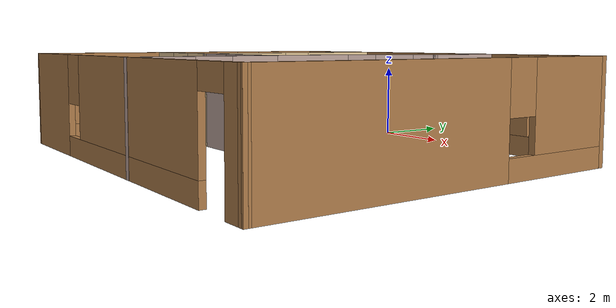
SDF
<?xml version='1.0'?>
<sdf version='1.6'>
  <model name='wierdMap'>
    <pose frame=''>1.76051 -4.87689 0 0 -0 0</pose>
    <link name='Wall_52'>
      <pose frame=''>-5.45927 -0.009076 0 0 0 -1.56748</pose>
      <visual name='Wall_52_Visual_0'>
        <pose frame=''>-3.52837 0 1.25 0 -0 0</pose>
        <geometry>
          <box>
            <size>2.21553 0.15 2.5</size>
          </box>
        </geometry>
        <material>
          <script>
            <uri>file://media/materials/scripts/gazebo.material</uri>
            <name>Gazebo/Wood</name>
          </script>
          <ambient>1 1 1 1</ambient>
        </material>
        <meta>
          <layer>0</layer>
        </meta>
      </visual>
      <collision name='Wall_52_Collision_0'>
        <geometry>
          <box>
            <size>2.21553 0.15 2.5</size>
          </box>
        </geometry>
        <pose frame=''>-3.52837 0 1.25 0 -0 0</pose>
      </collision>
      <visual name='Wall_52_Visual_1'>
        <pose frame=''>1.10776 0 0.25 0 -0 0</pose>
        <geometry>
          <box>
            <size>7.05673 0.15 0.5</size>
          </box>
        </geometry>
        <material>
          <script>
            <uri>file://media/materials/scripts/gazebo.material</uri>
            <name>Gazebo/Wood</name>
          </script>
          <ambient>1 1 1 1</ambient>
        </material>
        <meta>
          <layer>0</layer>
        </meta>
      </visual>
      <collision name='Wall_52_Collision_1'>
        <geometry>
          <box>
            <size>7.05673 0.15 0.5</size>
          </box>
        </geometry>
        <pose frame=''>1.10776 0 0.25 0 -0 0</pose>
      </collision>
      <visual name='Wall_52_Visual_2'>
        <pose frame=''>1.50776 0 1.5 0 -0 0</pose>
        <geometry>
          <box>
            <size>6.25673 0.15 2</size>
          </box>
        </geometry>
        <material>
          <script>
            <uri>file://media/materials/scripts/gazebo.material</uri>
            <name>Gazebo/Wood</name>
          </script>
          <ambient>1 1 1 1</ambient>
        </material>
        <meta>
          <layer>0</layer>
        </meta>
      </visual>
      <collision name='Wall_52_Collision_2'>
        <geometry>
          <box>
            <size>6.25673 0.15 2</size>
          </box>
        </geometry>
        <pose frame=''>1.50776 0 1.5 0 -0 0</pose>
      </collision>
      <visual name='Wall_52_Visual_3'>
        <pose frame=''>-2.0206 0 1.9 0 -0 0</pose>
        <geometry>
          <box>
            <size>0.8 0.15 1.2</size>
          </box>
        </geometry>
        <material>
          <script>
            <uri>file://media/materials/scripts/gazebo.material</uri>
            <name>Gazebo/Wood</name>
          </script>
          <ambient>1 1 1 1</ambient>
        </material>
        <meta>
          <layer>0</layer>
        </meta>
      </visual>
      <collision name='Wall_52_Collision_3'>
        <geometry>
          <box>
            <size>0.8 0.15 1.2</size>
          </box>
        </geometry>
        <pose frame=''>-2.0206 0 1.9 0 -0 0</pose>
      </collision>
    </link>
    <link name='Wall_53'>
      <pose frame=''>0.015206 -4.57618 0 0 0 -0.001099</pose>
      <visual name='Wall_53_Visual_0'>
        <pose frame=''>-4.19972 0 1.25 0 -0 0</pose>
        <geometry>
          <box>
            <size>2.66927 0.15 2.5</size>
          </box>
        </geometry>
        <material>
          <script>
            <uri>file://media/materials/scripts/gazebo.material</uri>
            <name>Gazebo/Wood</name>
          </script>
          <ambient>1 1 1 1</ambient>
        </material>
        <meta>
          <layer>0</layer>
        </meta>
      </visual>
      <collision name='Wall_53_Collision_0'>
        <geometry>
          <box>
            <size>2.66927 0.15 2.5</size>
          </box>
        </geometry>
        <pose frame=''>-4.19972 0 1.25 0 -0 0</pose>
      </collision>
      <visual name='Wall_53_Visual_1'>
        <pose frame=''>5.25308 0 1.25 0 -0 0</pose>
        <geometry>
          <box>
            <size>0.562551 0.15 2.5</size>
          </box>
        </geometry>
        <material>
          <script>
            <uri>file://media/materials/scripts/gazebo.material</uri>
            <name>Gazebo/Wood</name>
          </script>
          <ambient>1 1 1 1</ambient>
        </material>
        <meta>
          <layer>0</layer>
        </meta>
      </visual>
      <collision name='Wall_53_Collision_1'>
        <geometry>
          <box>
            <size>0.562551 0.15 2.5</size>
          </box>
        </geometry>
        <pose frame=''>5.25308 0 1.25 0 -0 0</pose>
      </collision>
      <visual name='Wall_53_Visual_2'>
        <pose frame=''>0.603361 0 0.25 0 -0 0</pose>
        <geometry>
          <box>
            <size>6.9369 0.15 0.5</size>
          </box>
        </geometry>
        <material>
          <script>
            <uri>file://media/materials/scripts/gazebo.material</uri>
            <name>Gazebo/Wood</name>
          </script>
          <ambient>1 1 1 1</ambient>
        </material>
        <meta>
          <layer>0</layer>
        </meta>
      </visual>
      <collision name='Wall_53_Collision_2'>
        <geometry>
          <box>
            <size>6.9369 0.15 0.5</size>
          </box>
        </geometry>
        <pose frame=''>0.603361 0 0.25 0 -0 0</pose>
      </collision>
      <visual name='Wall_53_Visual_3'>
        <pose frame=''>1.00336 0 1.5 0 -0 0</pose>
        <geometry>
          <box>
            <size>6.1369 0.15 2</size>
          </box>
        </geometry>
        <material>
          <script>
            <uri>file://media/materials/scripts/gazebo.material</uri>
            <name>Gazebo/Wood</name>
          </script>
          <ambient>1 1 1 1</ambient>
        </material>
        <meta>
          <layer>0</layer>
        </meta>
      </visual>
      <collision name='Wall_53_Collision_3'>
        <geometry>
          <box>
            <size>6.1369 0.15 2</size>
          </box>
        </geometry>
        <pose frame=''>1.00336 0 1.5 0 -0 0</pose>
      </collision>
      <visual name='Wall_53_Visual_4'>
        <pose frame=''>-2.46509 0 1.9 0 -0 0</pose>
        <geometry>
          <box>
            <size>0.8 0.15 1.2</size>
          </box>
        </geometry>
        <material>
          <script>
            <uri>file://media/materials/scripts/gazebo.material</uri>
            <name>Gazebo/Wood</name>
          </script>
          <ambient>1 1 1 1</ambient>
        </material>
        <meta>
          <layer>0</layer>
        </meta>
      </visual>
      <collision name='Wall_53_Collision_4'>
        <geometry>
          <box>
            <size>0.8 0.15 1.2</size>
          </box>
        </geometry>
        <pose frame=''>-2.46509 0 1.9 0 -0 0</pose>
      </collision>
      <visual name='Wall_53_Visual_5'>
        <pose frame=''>4.52181 0 2.25 0 -0 0</pose>
        <geometry>
          <box>
            <size>0.9 0.15 0.5</size>
          </box>
        </geometry>
        <material>
          <script>
            <uri>file://media/materials/scripts/gazebo.material</uri>
            <name>Gazebo/Wood</name>
          </script>
          <ambient>1 1 1 1</ambient>
        </material>
        <meta>
          <layer>0</layer>
        </meta>
      </visual>
      <collision name='Wall_53_Collision_5'>
        <geometry>
          <box>
            <size>0.9 0.15 0.5</size>
          </box>
        </geometry>
        <pose frame=''>4.52181 0 2.25 0 -0 0</pose>
      </collision>
    </link>
    <link name='Wall_54'>
      <pose frame=''>5.47456 4.5e-05 0 0 -0 1.5708</pose>
      <visual name='Wall_54_Visual_0'>
        <pose frame=''>-1.61369 0 1.25 0 -0 0</pose>
        <geometry>
          <box>
            <size>6.08712 0.15 2.5</size>
          </box>
        </geometry>
        <material>
          <script>
            <uri>file://media/materials/scripts/gazebo.material</uri>
            <name>Gazebo/Wood</name>
          </script>
          <ambient>1 1 1 1</ambient>
        </material>
        <meta>
          <layer>0</layer>
        </meta>
      </visual>
      <collision name='Wall_54_Collision_0'>
        <geometry>
          <box>
            <size>6.08712 0.15 2.5</size>
          </box>
        </geometry>
        <pose frame=''>-1.61369 0 1.25 0 -0 0</pose>
      </collision>
      <visual name='Wall_54_Visual_1'>
        <pose frame=''>3.04356 0 0.25 0 -0 0</pose>
        <geometry>
          <box>
            <size>3.22739 0.15 0.5</size>
          </box>
        </geometry>
        <material>
          <script>
            <uri>file://media/materials/scripts/gazebo.material</uri>
            <name>Gazebo/Wood</name>
          </script>
          <ambient>1 1 1 1</ambient>
        </material>
        <meta>
          <layer>0</layer>
        </meta>
      </visual>
      <collision name='Wall_54_Collision_1'>
        <geometry>
          <box>
            <size>3.22739 0.15 0.5</size>
          </box>
        </geometry>
        <pose frame=''>3.04356 0 0.25 0 -0 0</pose>
      </collision>
      <visual name='Wall_54_Visual_2'>
        <pose frame=''>3.44356 0 1.5 0 -0 0</pose>
        <geometry>
          <box>
            <size>2.42739 0.15 2</size>
          </box>
        </geometry>
        <material>
          <script>
            <uri>file://media/materials/scripts/gazebo.material</uri>
            <name>Gazebo/Wood</name>
          </script>
          <ambient>1 1 1 1</ambient>
        </material>
        <meta>
          <layer>0</layer>
        </meta>
      </visual>
      <collision name='Wall_54_Collision_2'>
        <geometry>
          <box>
            <size>2.42739 0.15 2</size>
          </box>
        </geometry>
        <pose frame=''>3.44356 0 1.5 0 -0 0</pose>
      </collision>
      <visual name='Wall_54_Visual_3'>
        <pose frame=''>1.82987 0 1.9 0 -0 0</pose>
        <geometry>
          <box>
            <size>0.8 0.15 1.2</size>
          </box>
        </geometry>
        <material>
          <script>
            <uri>file://media/materials/scripts/gazebo.material</uri>
            <name>Gazebo/Wood</name>
          </script>
          <ambient>1 1 1 1</ambient>
        </material>
        <meta>
          <layer>0</layer>
        </meta>
      </visual>
      <collision name='Wall_54_Collision_3'>
        <geometry>
          <box>
            <size>0.8 0.15 1.2</size>
          </box>
        </geometry>
        <pose frame=''>1.82987 0 1.9 0 -0 0</pose>
      </collision>
    </link>
    <link name='Wall_55'>
      <pose frame=''>0.049563 4.58228 0 0 -0 3.14159</pose>
      <visual name='Wall_55_Visual_0'>
        <pose frame=''>-4.9366 0 1.25 0 -0 0</pose>
        <geometry>
          <box>
            <size>1.1268 0.15 2.5</size>
          </box>
        </geometry>
        <material>
          <script>
            <uri>file://media/materials/scripts/gazebo.material</uri>
            <name>Gazebo/Wood</name>
          </script>
          <ambient>1 1 1 1</ambient>
        </material>
        <meta>
          <layer>0</layer>
        </meta>
      </visual>
      <collision name='Wall_55_Collision_0'>
        <geometry>
          <box>
            <size>1.1268 0.15 2.5</size>
          </box>
        </geometry>
        <pose frame=''>-4.9366 0 1.25 0 -0 0</pose>
      </collision>
      <visual name='Wall_55_Visual_1'>
        <pose frame=''>0.563398 0 0.25 0 -0 0</pose>
        <geometry>
          <box>
            <size>9.8732 0.15 0.5</size>
          </box>
        </geometry>
        <material>
          <script>
            <uri>file://media/materials/scripts/gazebo.material</uri>
            <name>Gazebo/Wood</name>
          </script>
          <ambient>1 1 1 1</ambient>
        </material>
        <meta>
          <layer>0</layer>
        </meta>
      </visual>
      <collision name='Wall_55_Collision_1'>
        <geometry>
          <box>
            <size>9.8732 0.15 0.5</size>
          </box>
        </geometry>
        <pose frame=''>0.563398 0 0.25 0 -0 0</pose>
      </collision>
      <visual name='Wall_55_Visual_2'>
        <pose frame=''>0.963398 0 1.5 0 -0 0</pose>
        <geometry>
          <box>
            <size>9.0732 0.15 2</size>
          </box>
        </geometry>
        <material>
          <script>
            <uri>file://media/materials/scripts/gazebo.material</uri>
            <name>Gazebo/Wood</name>
          </script>
          <ambient>1 1 1 1</ambient>
        </material>
        <meta>
          <layer>0</layer>
        </meta>
      </visual>
      <collision name='Wall_55_Collision_2'>
        <geometry>
          <box>
            <size>9.0732 0.15 2</size>
          </box>
        </geometry>
        <pose frame=''>0.963398 0 1.5 0 -0 0</pose>
      </collision>
      <visual name='Wall_55_Visual_3'>
        <pose frame=''>-3.9732 0 1.9 0 -0 0</pose>
        <geometry>
          <box>
            <size>0.8 0.15 1.2</size>
          </box>
        </geometry>
        <material>
          <script>
            <uri>file://media/materials/scripts/gazebo.material</uri>
            <name>Gazebo/Wood</name>
          </script>
          <ambient>1 1 1 1</ambient>
        </material>
        <meta>
          <layer>0</layer>
        </meta>
      </visual>
      <collision name='Wall_55_Collision_3'>
        <geometry>
          <box>
            <size>0.8 0.15 1.2</size>
          </box>
        </geometry>
        <pose frame=''>-3.9732 0 1.9 0 -0 0</pose>
      </collision>
    </link>
    <link name='Wall_57'>
      <pose frame=''>-2.41958 1.75203 0 0 0 -1.5708</pose>
      <visual name='Wall_57_Visual_0'>
        <pose frame=''>-1.67644 0 1.25 0 -0 0</pose>
        <geometry>
          <box>
            <size>2.39712 0.15 2.5</size>
          </box>
        </geometry>
        <material>
          <script>
            <uri>file://media/materials/scripts/gazebo.material</uri>
            <name>Gazebo/Grey</name>
          </script>
          <ambient>0.921569 0.807843 0.615686 1</ambient>
        </material>
        <meta>
          <layer>0</layer>
        </meta>
      </visual>
      <collision name='Wall_57_Collision_0'>
        <geometry>
          <box>
            <size>2.39712 0.15 2.5</size>
          </box>
        </geometry>
        <pose frame=''>-1.67644 0 1.25 0 -0 0</pose>
      </collision>
      <visual name='Wall_57_Visual_1'>
        <pose frame=''>1.19856 0 0.25 0 -0 0</pose>
        <geometry>
          <box>
            <size>3.35288 0.15 0.5</size>
          </box>
        </geometry>
        <material>
          <script>
            <uri>file://media/materials/scripts/gazebo.material</uri>
            <name>Gazebo/Grey</name>
          </script>
          <ambient>0.921569 0.807843 0.615686 1</ambient>
        </material>
        <meta>
          <layer>0</layer>
        </meta>
      </visual>
      <collision name='Wall_57_Collision_1'>
        <geometry>
          <box>
            <size>3.35288 0.15 0.5</size>
          </box>
        </geometry>
        <pose frame=''>1.19856 0 0.25 0 -0 0</pose>
      </collision>
      <visual name='Wall_57_Visual_2'>
        <pose frame=''>1.59856 0 1.5 0 -0 0</pose>
        <geometry>
          <box>
            <size>2.55288 0.15 2</size>
          </box>
        </geometry>
        <material>
          <script>
            <uri>file://media/materials/scripts/gazebo.material</uri>
            <name>Gazebo/Grey</name>
          </script>
          <ambient>0.921569 0.807843 0.615686 1</ambient>
        </material>
        <meta>
          <layer>0</layer>
        </meta>
      </visual>
      <collision name='Wall_57_Collision_2'>
        <geometry>
          <box>
            <size>2.55288 0.15 2</size>
          </box>
        </geometry>
        <pose frame=''>1.59856 0 1.5 0 -0 0</pose>
      </collision>
      <visual name='Wall_57_Visual_3'>
        <pose frame=''>-0.077883 0 1.9 0 -0 0</pose>
        <geometry>
          <box>
            <size>0.8 0.15 1.2</size>
          </box>
        </geometry>
        <material>
          <script>
            <uri>file://media/materials/scripts/gazebo.material</uri>
            <name>Gazebo/Grey</name>
          </script>
          <ambient>0.921569 0.807843 0.615686 1</ambient>
        </material>
        <meta>
          <layer>0</layer>
        </meta>
      </visual>
      <collision name='Wall_57_Collision_3'>
        <geometry>
          <box>
            <size>0.8 0.15 1.2</size>
          </box>
        </geometry>
        <pose frame=''>-0.077883 0 1.9 0 -0 0</pose>
      </collision>
    </link>
    <link name='Wall_58'>
      <pose frame=''>-3.93186 -1.0457 0 0 -0 3.14009</pose>
      <visual name='Wall_58_Visual_0'>
        <pose frame=''>-1.03377 0 1.25 0 -0 0</pose>
        <geometry>
          <box>
            <size>1.10715 0.15 2.5</size>
          </box>
        </geometry>
        <material>
          <script>
            <uri>file://media/materials/scripts/gazebo.material</uri>
            <name>Gazebo/Grey</name>
          </script>
          <ambient>0.921569 0.807843 0.615686 1</ambient>
        </material>
        <meta>
          <layer>0</layer>
        </meta>
      </visual>
      <collision name='Wall_58_Collision_0'>
        <geometry>
          <box>
            <size>1.10715 0.15 2.5</size>
          </box>
        </geometry>
        <pose frame=''>-1.03377 0 1.25 0 -0 0</pose>
      </collision>
      <visual name='Wall_58_Visual_1'>
        <pose frame=''>1.00357 0 1.25 0 -0 0</pose>
        <geometry>
          <box>
            <size>1.16754 0.15 2.5</size>
          </box>
        </geometry>
        <material>
          <script>
            <uri>file://media/materials/scripts/gazebo.material</uri>
            <name>Gazebo/Grey</name>
          </script>
          <ambient>0.921569 0.807843 0.615686 1</ambient>
        </material>
        <meta>
          <layer>0</layer>
        </meta>
      </visual>
      <collision name='Wall_58_Collision_1'>
        <geometry>
          <box>
            <size>1.16754 0.15 2.5</size>
          </box>
        </geometry>
        <pose frame=''>1.00357 0 1.25 0 -0 0</pose>
      </collision>
      <visual name='Wall_58_Visual_2'>
        <pose frame=''>-0.030197 0 2.25 0 -0 0</pose>
        <geometry>
          <box>
            <size>0.9 0.15 0.5</size>
          </box>
        </geometry>
        <material>
          <script>
            <uri>file://media/materials/scripts/gazebo.material</uri>
            <name>Gazebo/Grey</name>
          </script>
          <ambient>0.921569 0.807843 0.615686 1</ambient>
        </material>
        <meta>
          <layer>0</layer>
        </meta>
      </visual>
      <collision name='Wall_58_Collision_2'>
        <geometry>
          <box>
            <size>0.9 0.15 0.5</size>
          </box>
        </geometry>
        <pose frame=''>-0.030197 0 2.25 0 -0 0</pose>
      </collision>
    </link>
    <link name='Wall_60'>
      <pose frame=''>-0.744577 -1.04797 0 0 -0 0</pose>
      <visual name='Wall_60_Visual_0'>
        <pose frame=''>-1.12087 0 1.25 0 -0 0</pose>
        <geometry>
          <box>
            <size>1.25827 0.15 2.5</size>
          </box>
        </geometry>
        <material>
          <script>
            <uri>file://media/materials/scripts/gazebo.material</uri>
            <name>Gazebo/Grey</name>
          </script>
          <ambient>0.760784 0.662745 0.627451 1</ambient>
        </material>
        <meta>
          <layer>0</layer>
        </meta>
      </visual>
      <collision name='Wall_60_Collision_0'>
        <geometry>
          <box>
            <size>1.25827 0.15 2.5</size>
          </box>
        </geometry>
        <pose frame=''>-1.12087 0 1.25 0 -0 0</pose>
      </collision>
      <visual name='Wall_60_Visual_1'>
        <pose frame=''>1.07913 0 1.25 0 -0 0</pose>
        <geometry>
          <box>
            <size>1.34173 0.15 2.5</size>
          </box>
        </geometry>
        <material>
          <script>
            <uri>file://media/materials/scripts/gazebo.material</uri>
            <name>Gazebo/Grey</name>
          </script>
          <ambient>0.760784 0.662745 0.627451 1</ambient>
        </material>
        <meta>
          <layer>0</layer>
        </meta>
      </visual>
      <collision name='Wall_60_Collision_1'>
        <geometry>
          <box>
            <size>1.34173 0.15 2.5</size>
          </box>
        </geometry>
        <pose frame=''>1.07913 0 1.25 0 -0 0</pose>
      </collision>
      <visual name='Wall_60_Visual_2'>
        <pose frame=''>-0.04173 0 2.25 0 -0 0</pose>
        <geometry>
          <box>
            <size>0.9 0.15 0.5</size>
          </box>
        </geometry>
        <material>
          <script>
            <uri>file://media/materials/scripts/gazebo.material</uri>
            <name>Gazebo/Grey</name>
          </script>
          <ambient>0.760784 0.662745 0.627451 1</ambient>
        </material>
        <meta>
          <layer>0</layer>
        </meta>
      </visual>
      <collision name='Wall_60_Collision_2'>
        <geometry>
          <box>
            <size>0.9 0.15 0.5</size>
          </box>
        </geometry>
        <pose frame=''>-0.04173 0 2.25 0 -0 0</pose>
      </collision>
    </link>
    <link name='Wall_61'>
      <collision name='Wall_61_Collision'>
        <geometry>
          <box>
            <size>2.25 0.15 2.5</size>
          </box>
        </geometry>
        <pose frame=''>0 0 1.25 0 -0 0</pose>
      </collision>
      <visual name='Wall_61_Visual'>
        <pose frame=''>0 0 1.25 0 -0 0</pose>
        <geometry>
          <box>
            <size>2.25 0.15 2.5</size>
          </box>
        </geometry>
        <material>
          <script>
            <uri>file://media/materials/scripts/gazebo.material</uri>
            <name>Gazebo/Grey</name>
          </script>
          <ambient>0.760784 0.662745 0.627451 1</ambient>
        </material>
        <meta>
          <layer>0</layer>
        </meta>
      </visual>
      <pose frame=''>0.930423 0.00203 0 0 -0 1.5708</pose>
    </link>
    <link name='Wall_62'>
      <pose frame=''>1.67288 1.79449 0 0 -0 0.785398</pose>
      <visual name='Wall_62_Visual_0'>
        <pose frame=''>-0.735486 0 1.25 0 -0 0</pose>
        <geometry>
          <box>
            <size>0.779028 0.15 2.5</size>
          </box>
        </geometry>
        <material>
          <script>
            <uri>file://media/materials/scripts/gazebo.material</uri>
            <name>Gazebo/Grey</name>
          </script>
          <ambient>0.760784 0.662745 0.627451 1</ambient>
        </material>
        <meta>
          <layer>0</layer>
        </meta>
      </visual>
      <collision name='Wall_62_Collision_0'>
        <geometry>
          <box>
            <size>0.779028 0.15 2.5</size>
          </box>
        </geometry>
        <pose frame=''>-0.735486 0 1.25 0 -0 0</pose>
      </collision>
      <visual name='Wall_62_Visual_1'>
        <pose frame=''>0.839514 0 1.25 0 -0 0</pose>
        <geometry>
          <box>
            <size>0.570972 0.15 2.5</size>
          </box>
        </geometry>
        <material>
          <script>
            <uri>file://media/materials/scripts/gazebo.material</uri>
            <name>Gazebo/Grey</name>
          </script>
          <ambient>0.760784 0.662745 0.627451 1</ambient>
        </material>
        <meta>
          <layer>0</layer>
        </meta>
      </visual>
      <collision name='Wall_62_Collision_1'>
        <geometry>
          <box>
            <size>0.570972 0.15 2.5</size>
          </box>
        </geometry>
        <pose frame=''>0.839514 0 1.25 0 -0 0</pose>
      </collision>
      <visual name='Wall_62_Visual_2'>
        <pose frame=''>0.104028 0 2.25 0 -0 0</pose>
        <geometry>
          <box>
            <size>0.9 0.15 0.5</size>
          </box>
        </geometry>
        <material>
          <script>
            <uri>file://media/materials/scripts/gazebo.material</uri>
            <name>Gazebo/Grey</name>
          </script>
          <ambient>0.760784 0.662745 0.627451 1</ambient>
        </material>
        <meta>
          <layer>0</layer>
        </meta>
      </visual>
      <collision name='Wall_62_Collision_2'>
        <geometry>
          <box>
            <size>0.9 0.15 0.5</size>
          </box>
        </geometry>
        <pose frame=''>0.104028 0 2.25 0 -0 0</pose>
      </collision>
    </link>
    <link name='Wall_63'>
      <collision name='Wall_63_Collision'>
        <geometry>
          <box>
            <size>2.19533 0.15 2.5</size>
          </box>
        </geometry>
        <pose frame=''>0 0 1.25 0 -0 0</pose>
      </collision>
      <visual name='Wall_63_Visual'>
        <pose frame=''>0 0 1.25 0 -0 0</pose>
        <geometry>
          <box>
            <size>2.19533 0.15 2.5</size>
          </box>
        </geometry>
        <material>
          <script>
            <uri>file://media/materials/scripts/gazebo.material</uri>
            <name>Gazebo/Grey</name>
          </script>
          <ambient>0.760784 0.662745 0.627451 1</ambient>
        </material>
        <meta>
          <layer>0</layer>
        </meta>
      </visual>
      <pose frame=''>2.41755 3.55961 0 0 -0 1.56865</pose>
    </link>
    <link name='Wall_65'>
      <pose frame=''>0.934062 -2.81508 0 0 0 -1.56874</pose>
      <visual name='Wall_65_Visual_0'>
        <pose frame=''>-1.21538 0 1.25 0 -0 0</pose>
        <geometry>
          <box>
            <size>1.25365 0.15 2.5</size>
          </box>
        </geometry>
        <material>
          <script>
            <uri>file://media/materials/scripts/gazebo.material</uri>
            <name>Gazebo/Grey</name>
          </script>
          <ambient>0.760784 0.662745 0.627451 1</ambient>
        </material>
        <meta>
          <layer>0</layer>
        </meta>
      </visual>
      <collision name='Wall_65_Collision_0'>
        <geometry>
          <box>
            <size>1.25365 0.15 2.5</size>
          </box>
        </geometry>
        <pose frame=''>-1.21538 0 1.25 0 -0 0</pose>
      </collision>
      <visual name='Wall_65_Visual_1'>
        <pose frame=''>1.07683 0 1.25 0 -0 0</pose>
        <geometry>
          <box>
            <size>1.53076 0.15 2.5</size>
          </box>
        </geometry>
        <material>
          <script>
            <uri>file://media/materials/scripts/gazebo.material</uri>
            <name>Gazebo/Grey</name>
          </script>
          <ambient>0.760784 0.662745 0.627451 1</ambient>
        </material>
        <meta>
          <layer>0</layer>
        </meta>
      </visual>
      <collision name='Wall_65_Collision_1'>
        <geometry>
          <box>
            <size>1.53076 0.15 2.5</size>
          </box>
        </geometry>
        <pose frame=''>1.07683 0 1.25 0 -0 0</pose>
      </collision>
      <visual name='Wall_65_Visual_2'>
        <pose frame=''>-0.138553 0 2.25 0 -0 0</pose>
        <geometry>
          <box>
            <size>0.9 0.15 0.5</size>
          </box>
        </geometry>
        <material>
          <script>
            <uri>file://media/materials/scripts/gazebo.material</uri>
            <name>Gazebo/Grey</name>
          </script>
          <ambient>0.760784 0.662745 0.627451 1</ambient>
        </material>
        <meta>
          <layer>0</layer>
        </meta>
      </visual>
      <collision name='Wall_65_Collision_2'>
        <geometry>
          <box>
            <size>0.9 0.15 0.5</size>
          </box>
        </geometry>
        <pose frame=''>-0.138553 0 2.25 0 -0 0</pose>
      </collision>
    </link>
    <static>1</static>
  </model>
</sdf>
